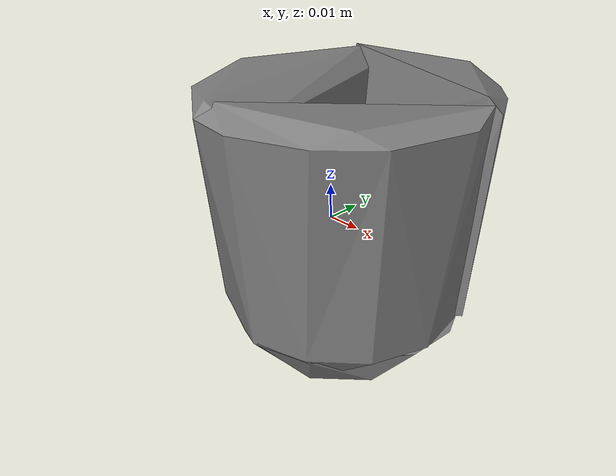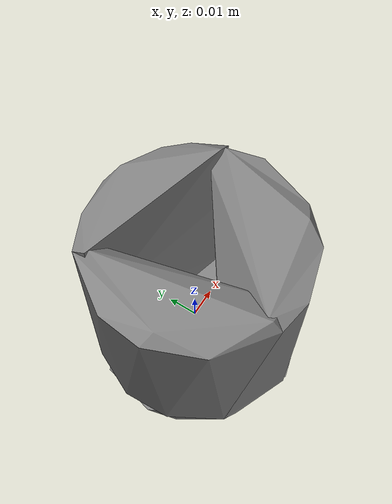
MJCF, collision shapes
<mujoco model="f_cups">
  <compiler angle="radian" />

  <asset>
    <mesh name="f_cups_visual_mesh" file="f_cups/textured.obj" />
    <mesh name="f_cups_collision_mesh_0" file="f_cups/textured_coacd_0.stl" />
    <mesh name="f_cups_collision_mesh_1" file="f_cups/textured_coacd_1.stl" />
    <mesh name="f_cups_collision_mesh_2" file="f_cups/textured_coacd_2.stl" />
    <mesh name="f_cups_collision_mesh_3" file="f_cups/textured_coacd_3.stl" />
    <texture name="f_cups_texture" type="2d" file="f_cups/texture_map.png" />
    <material name="f_cups_material" texture="f_cups_texture" />
  </asset>

  <worldbody>
    <body name="f_cups" pos="0 0 0" euler="0 0 0">
      <freejoint name="f_cups_joint" />
      <geom name="f_cups_visual_geom" type="mesh" mesh="f_cups_visual_mesh" material="f_cups_material" pos="0.03752278249207881 -0.024731456379195844 -0.03143344870002347" euler="0 0 0" contype="0" conaffinity="0" group="0" />
      <geom name="f_cups_collision_geom_0" type="mesh" mesh="f_cups_collision_mesh_0" pos="0.03752278249207881 -0.024731456379195844 -0.03143344870002347" euler="0 0 0" contype="1" conaffinity="1" group="3" />
      <geom name="f_cups_collision_geom_1" type="mesh" mesh="f_cups_collision_mesh_1" pos="0.03752278249207881 -0.024731456379195844 -0.03143344870002347" euler="0 0 0" contype="1" conaffinity="1" group="3" />
      <geom name="f_cups_collision_geom_2" type="mesh" mesh="f_cups_collision_mesh_2" pos="0.03752278249207881 -0.024731456379195844 -0.03143344870002347" euler="0 0 0" contype="1" conaffinity="1" group="3" />
      <geom name="f_cups_collision_geom_3" type="mesh" mesh="f_cups_collision_mesh_3" pos="0.03752278249207881 -0.024731456379195844 -0.03143344870002347" euler="0 0 0" contype="1" conaffinity="1" group="3" />
      <inertial pos="0 0 0" euler="0 0 0" mass="0.026" diaginertia="0.001 0.001 0.001" />
    </body>
  </worldbody>
</mujoco>
